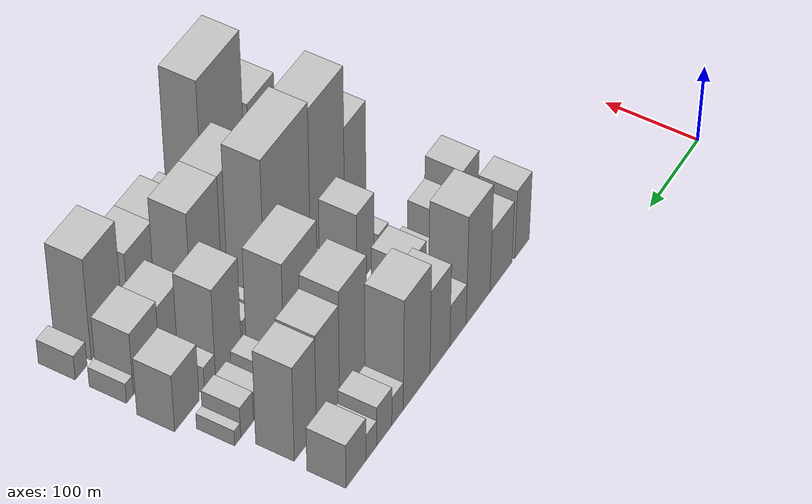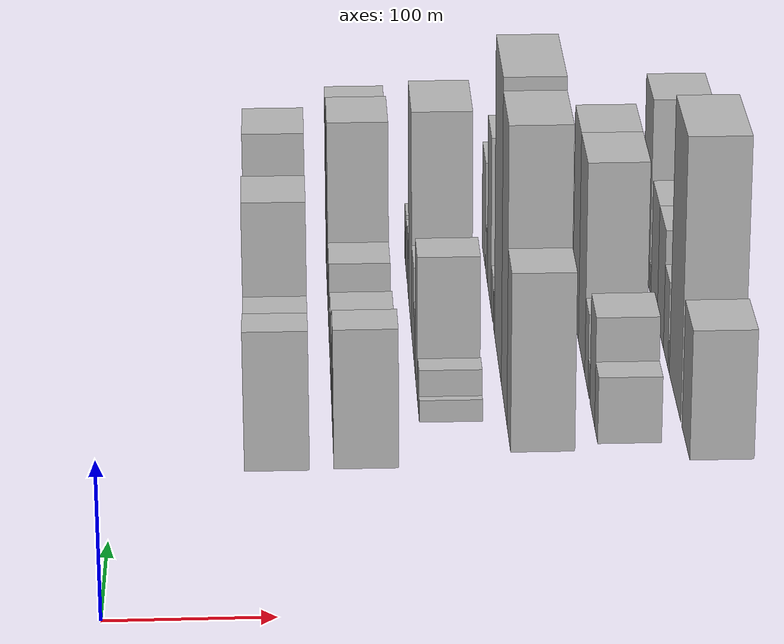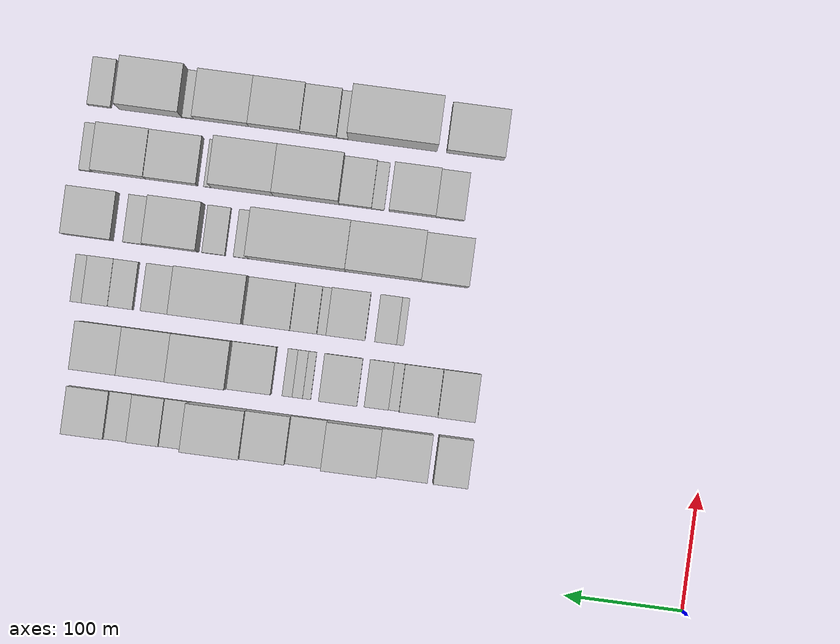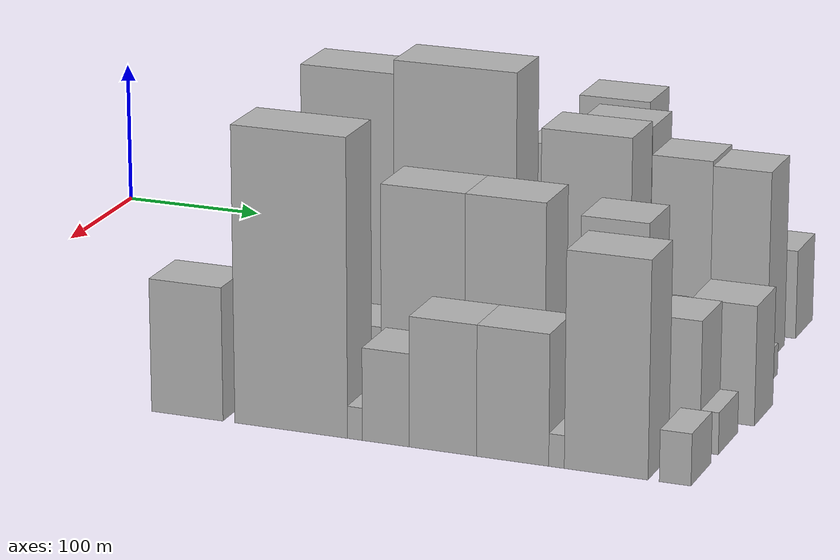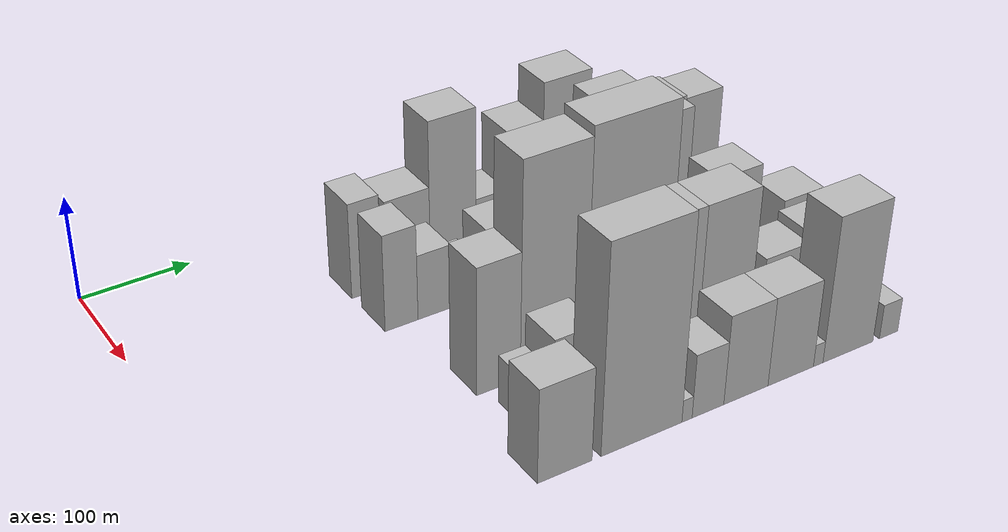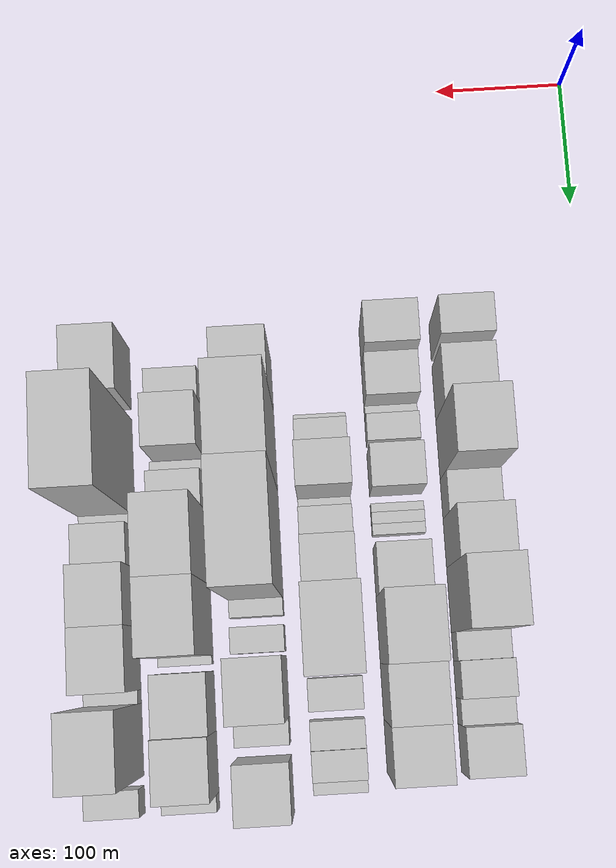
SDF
<sdf version="1.6">
 <world name="default">
  <model name="building_33">
   <static>1</static>
   <pose>100.0000 207.8353 0 0.000000 0.000000 0.000000</pose>
   <link name="link">
    <pose>0 0 46.50 0 0 0</pose>
    <collision name="collision"><geometry><box><size>40.0000 28.6792 93.0000</size></box></geometry></collision>
    <visual name="visual">
     <cast_shadows>0</cast_shadows>
     <geometry><box><size>40.0000 28.6792 93.0000</size></box></geometry>
     <material>
      <script>
       <uri>model://HANNAS_wall/materials/scripts</uri>
       <uri>model://HANNAS_wall/materials/textures</uri>
       <name>vrc/HANNAS_wall</name>
      </script>
     </material>
    </visual>
   </link>
  </model>
  <model name="building_34">
   <static>1</static>
   <pose>100.0000 248.5474 0 0.000000 0.000000 0.000000</pose>
   <link name="link">
    <pose>0 0 42.00 0 0 0</pose>
    <collision name="collision"><geometry><box><size>40.0000 42.7449 84.0000</size></box></geometry></collision>
    <visual name="visual">
     <cast_shadows>0</cast_shadows>
     <geometry><box><size>40.0000 42.7449 84.0000</size></box></geometry>
     <material>
      <script>
       <uri>model://HANNAS_wall/materials/scripts</uri>
       <uri>model://HANNAS_wall/materials/textures</uri>
       <name>vrc/HANNAS_wall</name>
      </script>
     </material>
    </visual>
   </link>
  </model>
  <model name="building_35">
   <static>1</static>
   <pose>100.0000 292.8291 0 0.000000 0.000000 0.000000</pose>
   <link name="link">
    <pose>0 0 73.50 0 0 0</pose>
    <collision name="collision"><geometry><box><size>40.0000 45.8186 147.0000</size></box></geometry></collision>
    <visual name="visual">
     <cast_shadows>0</cast_shadows>
     <geometry><box><size>40.0000 45.8186 147.0000</size></box></geometry>
     <material>
      <script>
       <uri>model://HANNAS_wall/materials/scripts</uri>
       <uri>model://HANNAS_wall/materials/textures</uri>
       <name>vrc/HANNAS_wall</name>
      </script>
     </material>
    </visual>
   </link>
  </model>
  <model name="building_36">
   <static>1</static>
   <pose>100.0000 330.9853 0 0.000000 0.000000 0.000000</pose>
   <link name="link">
    <pose>0 0 28.50 0 0 0</pose>
    <collision name="collision"><geometry><box><size>40.0000 30.4937 57.0000</size></box></geometry></collision>
    <visual name="visual">
     <cast_shadows>0</cast_shadows>
     <geometry><box><size>40.0000 30.4937 57.0000</size></box></geometry>
     <material>
      <script>
       <uri>model://HANNAS_wall/materials/scripts</uri>
       <uri>model://HANNAS_wall/materials/textures</uri>
       <name>vrc/HANNAS_wall</name>
      </script>
     </material>
    </visual>
   </link>
  </model>
  <model name="building_37">
   <static>1</static>
   <pose>100.0000 364.7827 0 0.000000 0.000000 0.000000</pose>
   <link name="link">
    <pose>0 0 57.00 0 0 0</pose>
    <collision name="collision"><geometry><box><size>40.0000 37.1011 114.0000</size></box></geometry></collision>
    <visual name="visual">
     <cast_shadows>0</cast_shadows>
     <geometry><box><size>40.0000 37.1011 114.0000</size></box></geometry>
     <material>
      <script>
       <uri>model://HANNAS_wall/materials/scripts</uri>
       <uri>model://HANNAS_wall/materials/textures</uri>
       <name>vrc/HANNAS_wall</name>
      </script>
     </material>
    </visual>
   </link>
  </model>
  <model name="building_38">
   <static>1</static>
   <pose>100.0000 407.6640 0 0.000000 0.000000 0.000000</pose>
   <link name="link">
    <pose>0 0 75.00 0 0 0</pose>
    <collision name="collision"><geometry><box><size>40.0000 48.6615 150.0000</size></box></geometry></collision>
    <visual name="visual">
     <cast_shadows>0</cast_shadows>
     <geometry><box><size>40.0000 48.6615 150.0000</size></box></geometry>
     <material>
      <script>
       <uri>model://HANNAS_wall/materials/scripts</uri>
       <uri>model://HANNAS_wall/materials/textures</uri>
       <name>vrc/HANNAS_wall</name>
      </script>
     </material>
    </visual>
   </link>
  </model>
  <model name="building_39">
   <static>1</static>
   <pose>100.0000 442.3935 0 0.000000 0.000000 0.000000</pose>
   <link name="link">
    <pose>0 0 19.50 0 0 0</pose>
    <collision name="collision"><geometry><box><size>40.0000 20.7976 39.0000</size></box></geometry></collision>
    <visual name="visual">
     <cast_shadows>0</cast_shadows>
     <geometry><box><size>40.0000 20.7976 39.0000</size></box></geometry>
     <material>
      <script>
       <uri>model://HANNAS_wall/materials/scripts</uri>
       <uri>model://HANNAS_wall/materials/textures</uri>
       <name>vrc/HANNAS_wall</name>
      </script>
     </material>
    </visual>
   </link>
  </model>
  <model name="building_40">
   <static>1</static>
   <pose>100.0000 466.3088 0 0.000000 0.000000 0.000000</pose>
   <link name="link">
    <pose>0 0 27.00 0 0 0</pose>
    <collision name="collision"><geometry><box><size>40.0000 27.0331 54.0000</size></box></geometry></collision>
    <visual name="visual">
     <cast_shadows>0</cast_shadows>
     <geometry><box><size>40.0000 27.0331 54.0000</size></box></geometry>
     <material>
      <script>
       <uri>model://HANNAS_wall/materials/scripts</uri>
       <uri>model://HANNAS_wall/materials/textures</uri>
       <name>vrc/HANNAS_wall</name>
      </script>
     </material>
    </visual>
   </link>
  </model>
  <model name="building_41">
   <static>1</static>
   <pose>100.0000 489.4667 0 0.000000 0.000000 0.000000</pose>
   <link name="link">
    <pose>0 0 18.00 0 0 0</pose>
    <collision name="collision"><geometry><box><size>40.0000 19.2828 36.0000</size></box></geometry></collision>
    <visual name="visual">
     <cast_shadows>0</cast_shadows>
     <geometry><box><size>40.0000 19.2828 36.0000</size></box></geometry>
     <material>
      <script>
       <uri>model://HANNAS_wall/materials/scripts</uri>
       <uri>model://HANNAS_wall/materials/textures</uri>
       <name>vrc/HANNAS_wall</name>
      </script>
     </material>
    </visual>
   </link>
  </model>
  <model name="building_42">
   <static>1</static>
   <pose>100.0000 516.7366 0 0.000000 0.000000 0.000000</pose>
   <link name="link">
    <pose>0 0 30.00 0 0 0</pose>
    <collision name="collision"><geometry><box><size>40.0000 35.2570 60.0000</size></box></geometry></collision>
    <visual name="visual">
     <cast_shadows>0</cast_shadows>
     <geometry><box><size>40.0000 35.2570 60.0000</size></box></geometry>
     <material>
      <script>
       <uri>model://HANNAS_wall/materials/scripts</uri>
       <uri>model://HANNAS_wall/materials/textures</uri>
       <name>vrc/HANNAS_wall</name>
      </script>
     </material>
    </visual>
   </link>
  </model>
  <model name="building_81">
   <static>1</static>
   <pose>155.0000 210.1403 0 0.000000 0.000000 0.000000</pose>
   <link name="link">
    <pose>0 0 46.50 0 0 0</pose>
    <collision name="collision"><geometry><box><size>40.0000 30.9602 93.0000</size></box></geometry></collision>
    <visual name="visual">
     <cast_shadows>0</cast_shadows>
     <geometry><box><size>40.0000 30.9602 93.0000</size></box></geometry>
     <material>
      <script>
       <uri>model://HANNAS_wall/materials/scripts</uri>
       <uri>model://HANNAS_wall/materials/textures</uri>
       <name>vrc/HANNAS_wall</name>
      </script>
     </material>
    </visual>
   </link>
  </model>
  <model name="building_82">
   <static>1</static>
   <pose>155.0000 241.7593 0 0.000000 0.000000 0.000000</pose>
   <link name="link">
    <pose>0 0 31.50 0 0 0</pose>
    <collision name="collision"><geometry><box><size>40.0000 32.2778 63.0000</size></box></geometry></collision>
    <visual name="visual">
     <cast_shadows>0</cast_shadows>
     <geometry><box><size>40.0000 32.2778 63.0000</size></box></geometry>
     <material>
      <script>
       <uri>model://HANNAS_wall/materials/scripts</uri>
       <uri>model://HANNAS_wall/materials/textures</uri>
       <name>vrc/HANNAS_wall</name>
      </script>
     </material>
    </visual>
   </link>
  </model>
  <model name="building_83">
   <static>1</static>
   <pose>155.0000 262.3826 0 0.000000 0.000000 0.000000</pose>
   <link name="link">
    <pose>0 0 9.00 0 0 0</pose>
    <collision name="collision"><geometry><box><size>40.0000 8.9688 18.0000</size></box></geometry></collision>
    <visual name="visual">
     <cast_shadows>0</cast_shadows>
     <geometry><box><size>40.0000 8.9688 18.0000</size></box></geometry>
     <material>
      <script>
       <uri>model://HANNAS_wall/materials/scripts</uri>
       <uri>model://HANNAS_wall/materials/textures</uri>
       <name>vrc/HANNAS_wall</name>
      </script>
     </material>
    </visual>
   </link>
  </model>
  <model name="building_84">
   <static>1</static>
   <pose>155.0000 277.1066 0 0.000000 0.000000 0.000000</pose>
   <link name="link">
    <pose>0 0 18.00 0 0 0</pose>
    <collision name="collision"><geometry><box><size>40.0000 20.4792 36.0000</size></box></geometry></collision>
    <visual name="visual">
     <cast_shadows>0</cast_shadows>
     <geometry><box><size>40.0000 20.4792 36.0000</size></box></geometry>
     <material>
      <script>
       <uri>model://HANNAS_wall/materials/scripts</uri>
       <uri>model://HANNAS_wall/materials/textures</uri>
       <name>vrc/HANNAS_wall</name>
      </script>
     </material>
    </visual>
   </link>
  </model>
  <model name="building_85">
   <static>1</static>
   <pose>155.0000 309.4111 0 0.000000 0.000000 0.000000</pose>
   <link name="link">
    <pose>0 0 31.50 0 0 0</pose>
    <collision name="collision"><geometry><box><size>40.0000 32.1298 63.0000</size></box></geometry></collision>
    <visual name="visual">
     <cast_shadows>0</cast_shadows>
     <geometry><box><size>40.0000 32.1298 63.0000</size></box></geometry>
     <material>
      <script>
       <uri>model://HANNAS_wall/materials/scripts</uri>
       <uri>model://HANNAS_wall/materials/textures</uri>
       <name>vrc/HANNAS_wall</name>
      </script>
     </material>
    </visual>
   </link>
  </model>
  <model name="building_86">
   <static>1</static>
   <pose>155.0000 335.9000 0 0.000000 0.000000 0.000000</pose>
   <link name="link">
    <pose>0 0 7.50 0 0 0</pose>
    <collision name="collision"><geometry><box><size>40.0000 6.8479 15.0000</size></box></geometry></collision>
    <visual name="visual">
     <cast_shadows>0</cast_shadows>
     <geometry><box><size>40.0000 6.8479 15.0000</size></box></geometry>
     <material>
      <script>
       <uri>model://HANNAS_wall/materials/scripts</uri>
       <uri>model://HANNAS_wall/materials/textures</uri>
       <name>vrc/HANNAS_wall</name>
      </script>
     </material>
    </visual>
   </link>
  </model>
  <model name="building_87">
   <static>1</static>
   <pose>155.0000 343.7761 0 0.000000 0.000000 0.000000</pose>
   <link name="link">
    <pose>0 0 9.00 0 0 0</pose>
    <collision name="collision"><geometry><box><size>40.0000 8.9042 18.0000</size></box></geometry></collision>
    <visual name="visual">
     <cast_shadows>0</cast_shadows>
     <geometry><box><size>40.0000 8.9042 18.0000</size></box></geometry>
     <material>
      <script>
       <uri>model://HANNAS_wall/materials/scripts</uri>
       <uri>model://HANNAS_wall/materials/textures</uri>
       <name>vrc/HANNAS_wall</name>
      </script>
     </material>
    </visual>
   </link>
  </model>
  <model name="building_88">
   <static>1</static>
   <pose>155.0000 352.4520 0 0.000000 0.000000 0.000000</pose>
   <link name="link">
    <pose>0 0 9.00 0 0 0</pose>
    <collision name="collision"><geometry><box><size>40.0000 8.4478 18.0000</size></box></geometry></collision>
    <visual name="visual">
     <cast_shadows>0</cast_shadows>
     <geometry><box><size>40.0000 8.4478 18.0000</size></box></geometry>
     <material>
      <script>
       <uri>model://HANNAS_wall/materials/scripts</uri>
       <uri>model://HANNAS_wall/materials/textures</uri>
       <name>vrc/HANNAS_wall</name>
      </script>
     </material>
    </visual>
   </link>
  </model>
  <model name="building_89">
   <static>1</static>
   <pose>155.0000 384.0610 0 0.000000 0.000000 0.000000</pose>
   <link name="link">
    <pose>0 0 33.00 0 0 0</pose>
    <collision name="collision"><geometry><box><size>40.0000 36.7701 66.0000</size></box></geometry></collision>
    <visual name="visual">
     <cast_shadows>0</cast_shadows>
     <geometry><box><size>40.0000 36.7701 66.0000</size></box></geometry>
     <material>
      <script>
       <uri>model://HANNAS_wall/materials/scripts</uri>
       <uri>model://HANNAS_wall/materials/textures</uri>
       <name>vrc/HANNAS_wall</name>
      </script>
     </material>
    </visual>
   </link>
  </model>
  <model name="building_90">
   <static>1</static>
   <pose>155.0000 427.0287 0 0.000000 0.000000 0.000000</pose>
   <link name="link">
    <pose>0 0 75.00 0 0 0</pose>
    <collision name="collision"><geometry><box><size>40.0000 49.1653 150.0000</size></box></geometry></collision>
    <visual name="visual">
     <cast_shadows>0</cast_shadows>
     <geometry><box><size>40.0000 49.1653 150.0000</size></box></geometry>
     <material>
      <script>
       <uri>model://HANNAS_wall/materials/scripts</uri>
       <uri>model://HANNAS_wall/materials/textures</uri>
       <name>vrc/HANNAS_wall</name>
      </script>
     </material>
    </visual>
   </link>
  </model>
  <model name="building_91">
   <static>1</static>
   <pose>155.0000 472.0223 0 0.000000 0.000000 0.000000</pose>
   <link name="link">
    <pose>0 0 66.00 0 0 0</pose>
    <collision name="collision"><geometry><box><size>40.0000 40.8221 132.0000</size></box></geometry></collision>
    <visual name="visual">
     <cast_shadows>0</cast_shadows>
     <geometry><box><size>40.0000 40.8221 132.0000</size></box></geometry>
     <material>
      <script>
       <uri>model://HANNAS_wall/materials/scripts</uri>
       <uri>model://HANNAS_wall/materials/textures</uri>
       <name>vrc/HANNAS_wall</name>
      </script>
     </material>
    </visual>
   </link>
  </model>
  <model name="building_92">
   <static>1</static>
   <pose>155.0000 511.8199 0 0.000000 0.000000 0.000000</pose>
   <link name="link">
    <pose>0 0 64.50 0 0 0</pose>
    <collision name="collision"><geometry><box><size>40.0000 38.7729 129.0000</size></box></geometry></collision>
    <visual name="visual">
     <cast_shadows>0</cast_shadows>
     <geometry><box><size>40.0000 38.7729 129.0000</size></box></geometry>
     <material>
      <script>
       <uri>model://HANNAS_wall/materials/scripts</uri>
       <uri>model://HANNAS_wall/materials/textures</uri>
       <name>vrc/HANNAS_wall</name>
      </script>
     </material>
    </visual>
   </link>
  </model>
  <model name="building_130">
   <static>1</static>
   <pose>210.0000 264.2033 0 0.000000 0.000000 0.000000</pose>
   <link name="link">
    <pose>0 0 7.50 0 0 0</pose>
    <collision name="collision"><geometry><box><size>40.0000 6.1246 15.0000</size></box></geometry></collision>
    <visual name="visual">
     <cast_shadows>0</cast_shadows>
     <geometry><box><size>40.0000 6.1246 15.0000</size></box></geometry>
     <material>
      <script>
       <uri>model://HANNAS_wall/materials/scripts</uri>
       <uri>model://HANNAS_wall/materials/textures</uri>
       <name>vrc/HANNAS_wall</name>
      </script>
     </material>
    </visual>
   </link>
  </model>
  <model name="building_131">
   <static>1</static>
   <pose>210.0000 276.5284 0 0.000000 0.000000 0.000000</pose>
   <link name="link">
    <pose>0 0 16.50 0 0 0</pose>
    <collision name="collision"><geometry><box><size>40.0000 18.5256 33.0000</size></box></geometry></collision>
    <visual name="visual">
     <cast_shadows>0</cast_shadows>
     <geometry><box><size>40.0000 18.5256 33.0000</size></box></geometry>
     <material>
      <script>
       <uri>model://HANNAS_wall/materials/scripts</uri>
       <uri>model://HANNAS_wall/materials/textures</uri>
       <name>vrc/HANNAS_wall</name>
      </script>
     </material>
    </visual>
   </link>
  </model>
  <model name="building_132">
   <static>1</static>
   <pose>210.0000 309.9984 0 0.000000 0.000000 0.000000</pose>
   <link name="link">
    <pose>0 0 49.50 0 0 0</pose>
    <collision name="collision"><geometry><box><size>40.0000 32.4144 99.0000</size></box></geometry></collision>
    <visual name="visual">
     <cast_shadows>0</cast_shadows>
     <geometry><box><size>40.0000 32.4144 99.0000</size></box></geometry>
     <material>
      <script>
       <uri>model://HANNAS_wall/materials/scripts</uri>
       <uri>model://HANNAS_wall/materials/textures</uri>
       <name>vrc/HANNAS_wall</name>
      </script>
     </material>
    </visual>
   </link>
  </model>
  <model name="building_133">
   <static>1</static>
   <pose>210.0000 330.3408 0 0.000000 0.000000 0.000000</pose>
   <link name="link">
    <pose>0 0 9.00 0 0 0</pose>
    <collision name="collision"><geometry><box><size>40.0000 8.2704 18.0000</size></box></geometry></collision>
    <visual name="visual">
     <cast_shadows>0</cast_shadows>
     <geometry><box><size>40.0000 8.2704 18.0000</size></box></geometry>
     <material>
      <script>
       <uri>model://HANNAS_wall/materials/scripts</uri>
       <uri>model://HANNAS_wall/materials/textures</uri>
       <name>vrc/HANNAS_wall</name>
      </script>
     </material>
    </visual>
   </link>
  </model>
  <model name="building_134">
   <static>1</static>
   <pose>210.0000 345.7050 0 0.000000 0.000000 0.000000</pose>
   <link name="link">
    <pose>0 0 21.00 0 0 0</pose>
    <collision name="collision"><geometry><box><size>40.0000 22.4581 42.0000</size></box></geometry></collision>
    <visual name="visual">
     <cast_shadows>0</cast_shadows>
     <geometry><box><size>40.0000 22.4581 42.0000</size></box></geometry>
     <material>
      <script>
       <uri>model://HANNAS_wall/materials/scripts</uri>
       <uri>model://HANNAS_wall/materials/textures</uri>
       <name>vrc/HANNAS_wall</name>
      </script>
     </material>
    </visual>
   </link>
  </model>
  <model name="building_135">
   <static>1</static>
   <pose>210.0000 376.3959 0 0.000000 0.000000 0.000000</pose>
   <link name="link">
    <pose>0 0 33.00 0 0 0</pose>
    <collision name="collision"><geometry><box><size>40.0000 38.9238 66.0000</size></box></geometry></collision>
    <visual name="visual">
     <cast_shadows>0</cast_shadows>
     <geometry><box><size>40.0000 38.9238 66.0000</size></box></geometry>
     <material>
      <script>
       <uri>model://HANNAS_wall/materials/scripts</uri>
       <uri>model://HANNAS_wall/materials/textures</uri>
       <name>vrc/HANNAS_wall</name>
      </script>
     </material>
    </visual>
   </link>
  </model>
  <model name="building_136">
   <static>1</static>
   <pose>210.0000 426.0237 0 0.000000 0.000000 0.000000</pose>
   <link name="link">
    <pose>0 0 79.50 0 0 0</pose>
    <collision name="collision"><geometry><box><size>40.0000 60.3318 159.0000</size></box></geometry></collision>
    <visual name="visual">
     <cast_shadows>0</cast_shadows>
     <geometry><box><size>40.0000 60.3318 159.0000</size></box></geometry>
     <material>
      <script>
       <uri>model://HANNAS_wall/materials/scripts</uri>
       <uri>model://HANNAS_wall/materials/textures</uri>
       <name>vrc/HANNAS_wall</name>
      </script>
     </material>
    </visual>
   </link>
  </model>
  <model name="building_137">
   <static>1</static>
   <pose>210.0000 470.8934 0 0.000000 0.000000 0.000000</pose>
   <link name="link">
    <pose>0 0 22.50 0 0 0</pose>
    <collision name="collision"><geometry><box><size>40.0000 23.4076 45.0000</size></box></geometry></collision>
    <visual name="visual">
     <cast_shadows>0</cast_shadows>
     <geometry><box><size>40.0000 23.4076 45.0000</size></box></geometry>
     <material>
      <script>
       <uri>model://HANNAS_wall/materials/scripts</uri>
       <uri>model://HANNAS_wall/materials/textures</uri>
       <name>vrc/HANNAS_wall</name>
      </script>
     </material>
    </visual>
   </link>
  </model>
  <model name="building_138">
   <static>1</static>
   <pose>210.0000 499.9682 0 0.000000 0.000000 0.000000</pose>
   <link name="link">
    <pose>0 0 19.50 0 0 0</pose>
    <collision name="collision"><geometry><box><size>40.0000 20.7420 39.0000</size></box></geometry></collision>
    <visual name="visual">
     <cast_shadows>0</cast_shadows>
     <geometry><box><size>40.0000 20.7420 39.0000</size></box></geometry>
     <material>
      <script>
       <uri>model://HANNAS_wall/materials/scripts</uri>
       <uri>model://HANNAS_wall/materials/textures</uri>
       <name>vrc/HANNAS_wall</name>
      </script>
     </material>
    </visual>
   </link>
  </model>
  <model name="building_139">
   <static>1</static>
   <pose>210.0000 521.3492 0 0.000000 0.000000 0.000000</pose>
   <link name="link">
    <pose>0 0 21.00 0 0 0</pose>
    <collision name="collision"><geometry><box><size>40.0000 22.0198 42.0000</size></box></geometry></collision>
    <visual name="visual">
     <cast_shadows>0</cast_shadows>
     <geometry><box><size>40.0000 22.0198 42.0000</size></box></geometry>
     <material>
      <script>
       <uri>model://HANNAS_wall/materials/scripts</uri>
       <uri>model://HANNAS_wall/materials/textures</uri>
       <name>vrc/HANNAS_wall</name>
      </script>
     </material>
    </visual>
   </link>
  </model>
  <model name="building_140">
   <static>1</static>
   <pose>210.0000 537.5571 0 0.000000 0.000000 0.000000</pose>
   <link name="link">
    <pose>0 0 10.50 0 0 0</pose>
    <collision name="collision"><geometry><box><size>40.0000 10.3960 21.0000</size></box></geometry></collision>
    <visual name="visual">
     <cast_shadows>0</cast_shadows>
     <geometry><box><size>40.0000 10.3960 21.0000</size></box></geometry>
     <material>
      <script>
       <uri>model://HANNAS_wall/materials/scripts</uri>
       <uri>model://HANNAS_wall/materials/textures</uri>
       <name>vrc/HANNAS_wall</name>
      </script>
     </material>
    </visual>
   </link>
  </model>
  <model name="building_184">
   <static>1</static>
   <pose>265.0000 234.5608 0 0.000000 0.000000 0.000000</pose>
   <link name="link">
    <pose>0 0 60.00 0 0 0</pose>
    <collision name="collision"><geometry><box><size>40.0000 40.2136 120.0000</size></box></geometry></collision>
    <visual name="visual">
     <cast_shadows>0</cast_shadows>
     <geometry><box><size>40.0000 40.2136 120.0000</size></box></geometry>
     <material>
      <script>
       <uri>model://HANNAS_wall/materials/scripts</uri>
       <uri>model://HANNAS_wall/materials/textures</uri>
       <name>vrc/HANNAS_wall</name>
      </script>
     </material>
    </visual>
   </link>
  </model>
  <model name="building_185">
   <static>1</static>
   <pose>265.0000 285.9932 0 0.000000 0.000000 0.000000</pose>
   <link name="link">
    <pose>0 0 100.50 0 0 0</pose>
    <collision name="collision"><geometry><box><size>40.0000 62.6513 201.0000</size></box></geometry></collision>
    <visual name="visual">
     <cast_shadows>0</cast_shadows>
     <geometry><box><size>40.0000 62.6513 201.0000</size></box></geometry>
     <material>
      <script>
       <uri>model://HANNAS_wall/materials/scripts</uri>
       <uri>model://HANNAS_wall/materials/textures</uri>
       <name>vrc/HANNAS_wall</name>
      </script>
     </material>
    </visual>
   </link>
  </model>
  <model name="building_186">
   <static>1</static>
   <pose>265.0000 358.1445 0 0.000000 0.000000 0.000000</pose>
   <link name="link">
    <pose>0 0 105.00 0 0 0</pose>
    <collision name="collision"><geometry><box><size>40.0000 81.6512 210.0000</size></box></geometry></collision>
    <visual name="visual">
     <cast_shadows>0</cast_shadows>
     <geometry><box><size>40.0000 81.6512 210.0000</size></box></geometry>
     <material>
      <script>
       <uri>model://HANNAS_wall/materials/scripts</uri>
       <uri>model://HANNAS_wall/materials/textures</uri>
       <name>vrc/HANNAS_wall</name>
      </script>
     </material>
    </visual>
   </link>
  </model>
  <model name="building_187">
   <static>1</static>
   <pose>265.0000 405.5779 0 0.000000 0.000000 0.000000</pose>
   <link name="link">
    <pose>0 0 13.50 0 0 0</pose>
    <collision name="collision"><geometry><box><size>40.0000 13.2157 27.0000</size></box></geometry></collision>
    <visual name="visual">
     <cast_shadows>0</cast_shadows>
     <geometry><box><size>40.0000 13.2157 27.0000</size></box></geometry>
     <material>
      <script>
       <uri>model://HANNAS_wall/materials/scripts</uri>
       <uri>model://HANNAS_wall/materials/textures</uri>
       <name>vrc/HANNAS_wall</name>
      </script>
     </material>
    </visual>
   </link>
  </model>
  <model name="building_188">
   <static>1</static>
   <pose>265.0000 428.8843 0 0.000000 0.000000 0.000000</pose>
   <link name="link">
    <pose>0 0 16.50 0 0 0</pose>
    <collision name="collision"><geometry><box><size>40.0000 19.3971 33.0000</size></box></geometry></collision>
    <visual name="visual">
     <cast_shadows>0</cast_shadows>
     <geometry><box><size>40.0000 19.3971 33.0000</size></box></geometry>
     <material>
      <script>
       <uri>model://HANNAS_wall/materials/scripts</uri>
       <uri>model://HANNAS_wall/materials/textures</uri>
       <name>vrc/HANNAS_wall</name>
      </script>
     </material>
    </visual>
   </link>
  </model>
  <model name="building_189">
   <static>1</static>
   <pose>265.0000 463.8488 0 0.000000 0.000000 0.000000</pose>
   <link name="link">
    <pose>0 0 61.50 0 0 0</pose>
    <collision name="collision"><geometry><box><size>40.0000 44.5318 123.0000</size></box></geometry></collision>
    <visual name="visual">
     <cast_shadows>0</cast_shadows>
     <geometry><box><size>40.0000 44.5318 123.0000</size></box></geometry>
     <material>
      <script>
       <uri>model://HANNAS_wall/materials/scripts</uri>
       <uri>model://HANNAS_wall/materials/textures</uri>
       <name>vrc/HANNAS_wall</name>
      </script>
     </material>
    </visual>
   </link>
  </model>
  <model name="building_190">
   <static>1</static>
   <pose>265.0000 495.5735 0 0.000000 0.000000 0.000000</pose>
   <link name="link">
    <pose>0 0 18.00 0 0 0</pose>
    <collision name="collision"><geometry><box><size>40.0000 18.9177 36.0000</size></box></geometry></collision>
    <visual name="visual">
     <cast_shadows>0</cast_shadows>
     <geometry><box><size>40.0000 18.9177 36.0000</size></box></geometry>
     <material>
      <script>
       <uri>model://HANNAS_wall/materials/scripts</uri>
       <uri>model://HANNAS_wall/materials/textures</uri>
       <name>vrc/HANNAS_wall</name>
      </script>
     </material>
    </visual>
   </link>
  </model>
  <model name="building_191">
   <static>1</static>
   <pose>265.0000 534.9587 0 0.000000 0.000000 0.000000</pose>
   <link name="link">
    <pose>0 0 39.00 0 0 0</pose>
    <collision name="collision"><geometry><box><size>40.0000 41.8527 78.0000</size></box></geometry></collision>
    <visual name="visual">
     <cast_shadows>0</cast_shadows>
     <geometry><box><size>40.0000 41.8527 78.0000</size></box></geometry>
     <material>
      <script>
       <uri>model://HANNAS_wall/materials/scripts</uri>
       <uri>model://HANNAS_wall/materials/textures</uri>
       <name>vrc/HANNAS_wall</name>
      </script>
     </material>
    </visual>
   </link>
  </model>
  <model name="building_229">
   <static>1</static>
   <pose>320.0000 236.8170 0 0.000000 0.000000 0.000000</pose>
   <link name="link">
    <pose>0 0 22.50 0 0 0</pose>
    <collision name="collision"><geometry><box><size>40.0000 24.2259 45.0000</size></box></geometry></collision>
    <visual name="visual">
     <cast_shadows>0</cast_shadows>
     <geometry><box><size>40.0000 24.2259 45.0000</size></box></geometry>
     <material>
      <script>
       <uri>model://HANNAS_wall/materials/scripts</uri>
       <uri>model://HANNAS_wall/materials/textures</uri>
       <name>vrc/HANNAS_wall</name>
      </script>
     </material>
    </visual>
   </link>
  </model>
  <model name="building_230">
   <static>1</static>
   <pose>320.0000 268.5896 0 0.000000 0.000000 0.000000</pose>
   <link name="link">
    <pose>0 0 37.50 0 0 0</pose>
    <collision name="collision"><geometry><box><size>40.0000 39.3193 75.0000</size></box></geometry></collision>
    <visual name="visual">
     <cast_shadows>0</cast_shadows>
     <geometry><box><size>40.0000 39.3193 75.0000</size></box></geometry>
     <material>
      <script>
       <uri>model://HANNAS_wall/materials/scripts</uri>
       <uri>model://HANNAS_wall/materials/textures</uri>
       <name>vrc/HANNAS_wall</name>
      </script>
     </material>
    </visual>
   </link>
  </model>
  <model name="building_231">
   <static>1</static>
   <pose>320.0000 297.6039 0 0.000000 0.000000 0.000000</pose>
   <link name="link">
    <pose>0 0 12.00 0 0 0</pose>
    <collision name="collision"><geometry><box><size>40.0000 10.7092 24.0000</size></box></geometry></collision>
    <visual name="visual">
     <cast_shadows>0</cast_shadows>
     <geometry><box><size>40.0000 10.7092 24.0000</size></box></geometry>
     <material>
      <script>
       <uri>model://HANNAS_wall/materials/scripts</uri>
       <uri>model://HANNAS_wall/materials/textures</uri>
       <name>vrc/HANNAS_wall</name>
      </script>
     </material>
    </visual>
   </link>
  </model>
  <model name="building_232">
   <static>1</static>
   <pose>320.0000 316.6450 0 0.000000 0.000000 0.000000</pose>
   <link name="link">
    <pose>0 0 27.00 0 0 0</pose>
    <collision name="collision"><geometry><box><size>40.0000 27.3729 54.0000</size></box></geometry></collision>
    <visual name="visual">
     <cast_shadows>0</cast_shadows>
     <geometry><box><size>40.0000 27.3729 54.0000</size></box></geometry>
     <material>
      <script>
       <uri>model://HANNAS_wall/materials/scripts</uri>
       <uri>model://HANNAS_wall/materials/textures</uri>
       <name>vrc/HANNAS_wall</name>
      </script>
     </material>
    </visual>
   </link>
  </model>
  <model name="building_233">
   <static>1</static>
   <pose>320.0000 358.0714 0 0.000000 0.000000 0.000000</pose>
   <link name="link">
    <pose>0 0 73.50 0 0 0</pose>
    <collision name="collision"><geometry><box><size>40.0000 55.4801 147.0000</size></box></geometry></collision>
    <visual name="visual">
     <cast_shadows>0</cast_shadows>
     <geometry><box><size>40.0000 55.4801 147.0000</size></box></geometry>
     <material>
      <script>
       <uri>model://HANNAS_wall/materials/scripts</uri>
       <uri>model://HANNAS_wall/materials/textures</uri>
       <name>vrc/HANNAS_wall</name>
      </script>
     </material>
    </visual>
   </link>
  </model>
  <model name="building_234">
   <static>1</static>
   <pose>320.0000 412.0061 0 0.000000 0.000000 0.000000</pose>
   <link name="link">
    <pose>0 0 73.50 0 0 0</pose>
    <collision name="collision"><geometry><box><size>40.0000 52.3892 147.0000</size></box></geometry></collision>
    <visual name="visual">
     <cast_shadows>0</cast_shadows>
     <geometry><box><size>40.0000 52.3892 147.0000</size></box></geometry>
     <material>
      <script>
       <uri>model://HANNAS_wall/materials/scripts</uri>
       <uri>model://HANNAS_wall/materials/textures</uri>
       <name>vrc/HANNAS_wall</name>
      </script>
     </material>
    </visual>
   </link>
  </model>
  <model name="building_235">
   <static>1</static>
   <pose>320.0000 441.5109 0 0.000000 0.000000 0.000000</pose>
   <link name="link">
    <pose>0 0 7.50 0 0 0</pose>
    <collision name="collision"><geometry><box><size>40.0000 6.6205 15.0000</size></box></geometry></collision>
    <visual name="visual">
     <cast_shadows>0</cast_shadows>
     <geometry><box><size>40.0000 6.6205 15.0000</size></box></geometry>
     <material>
      <script>
       <uri>model://HANNAS_wall/materials/scripts</uri>
       <uri>model://HANNAS_wall/materials/textures</uri>
       <name>vrc/HANNAS_wall</name>
      </script>
     </material>
    </visual>
   </link>
  </model>
  <model name="building_236">
   <static>1</static>
   <pose>320.0000 471.8070 0 0.000000 0.000000 0.000000</pose>
   <link name="link">
    <pose>0 0 37.50 0 0 0</pose>
    <collision name="collision"><geometry><box><size>40.0000 43.9716 75.0000</size></box></geometry></collision>
    <visual name="visual">
     <cast_shadows>0</cast_shadows>
     <geometry><box><size>40.0000 43.9716 75.0000</size></box></geometry>
     <material>
      <script>
       <uri>model://HANNAS_wall/materials/scripts</uri>
       <uri>model://HANNAS_wall/materials/textures</uri>
       <name>vrc/HANNAS_wall</name>
      </script>
     </material>
    </visual>
   </link>
  </model>
  <model name="building_237">
   <static>1</static>
   <pose>320.0000 515.8968 0 0.000000 0.000000 0.000000</pose>
   <link name="link">
    <pose>0 0 42.00 0 0 0</pose>
    <collision name="collision"><geometry><box><size>40.0000 44.2081 84.0000</size></box></geometry></collision>
    <visual name="visual">
     <cast_shadows>0</cast_shadows>
     <geometry><box><size>40.0000 44.2081 84.0000</size></box></geometry>
     <material>
      <script>
       <uri>model://HANNAS_wall/materials/scripts</uri>
       <uri>model://HANNAS_wall/materials/textures</uri>
       <name>vrc/HANNAS_wall</name>
      </script>
     </material>
    </visual>
   </link>
  </model>
  <model name="building_238">
   <static>1</static>
   <pose>320.0000 543.8730 0 0.000000 0.000000 0.000000</pose>
   <link name="link">
    <pose>0 0 13.50 0 0 0</pose>
    <collision name="collision"><geometry><box><size>40.0000 11.7443 27.0000</size></box></geometry></collision>
    <visual name="visual">
     <cast_shadows>0</cast_shadows>
     <geometry><box><size>40.0000 11.7443 27.0000</size></box></geometry>
     <material>
      <script>
       <uri>model://HANNAS_wall/materials/scripts</uri>
       <uri>model://HANNAS_wall/materials/textures</uri>
       <name>vrc/HANNAS_wall</name>
      </script>
     </material>
    </visual>
   </link>
  </model>
  <model name="building_279">
   <static>1</static>
   <pose>375.0000 222.6636 0 0.000000 0.000000 0.000000</pose>
   <link name="link">
    <pose>0 0 43.50 0 0 0</pose>
    <collision name="collision"><geometry><box><size>40.0000 48.4878 87.0000</size></box></geometry></collision>
    <visual name="visual">
     <cast_shadows>0</cast_shadows>
     <geometry><box><size>40.0000 48.4878 87.0000</size></box></geometry>
     <material>
      <script>
       <uri>model://HANNAS_wall/materials/scripts</uri>
       <uri>model://HANNAS_wall/materials/textures</uri>
       <name>vrc/HANNAS_wall</name>
      </script>
     </material>
    </visual>
   </link>
  </model>
  <model name="building_280">
   <static>1</static>
   <pose>375.0000 292.4628 0 0.000000 0.000000 0.000000</pose>
   <link name="link">
    <pose>0 0 96.00 0 0 0</pose>
    <collision name="collision"><geometry><box><size>40.0000 75.1106 192.0000</size></box></geometry></collision>
    <visual name="visual">
     <cast_shadows>0</cast_shadows>
     <geometry><box><size>40.0000 75.1106 192.0000</size></box></geometry>
     <material>
      <script>
       <uri>model://HANNAS_wall/materials/scripts</uri>
       <uri>model://HANNAS_wall/materials/textures</uri>
       <name>vrc/HANNAS_wall</name>
      </script>
     </material>
    </visual>
   </link>
  </model>
  <model name="building_281">
   <static>1</static>
   <pose>375.0000 334.8740 0 0.000000 0.000000 0.000000</pose>
   <link name="link">
    <pose>0 0 10.50 0 0 0</pose>
    <collision name="collision"><geometry><box><size>40.0000 9.7119 21.0000</size></box></geometry></collision>
    <visual name="visual">
     <cast_shadows>0</cast_shadows>
     <geometry><box><size>40.0000 9.7119 21.0000</size></box></geometry>
     <material>
      <script>
       <uri>model://HANNAS_wall/materials/scripts</uri>
       <uri>model://HANNAS_wall/materials/textures</uri>
       <name>vrc/HANNAS_wall</name>
      </script>
     </material>
    </visual>
   </link>
  </model>
  <model name="building_282">
   <static>1</static>
   <pose>375.0000 355.0434 0 0.000000 0.000000 0.000000</pose>
   <link name="link">
    <pose>0 0 30.00 0 0 0</pose>
    <collision name="collision"><geometry><box><size>40.0000 30.6269 60.0000</size></box></geometry></collision>
    <visual name="visual">
     <cast_shadows>0</cast_shadows>
     <geometry><box><size>40.0000 30.6269 60.0000</size></box></geometry>
     <material>
      <script>
       <uri>model://HANNAS_wall/materials/scripts</uri>
       <uri>model://HANNAS_wall/materials/textures</uri>
       <name>vrc/HANNAS_wall</name>
      </script>
     </material>
    </visual>
   </link>
  </model>
  <model name="building_283">
   <static>1</static>
   <pose>375.0000 392.2228 0 0.000000 0.000000 0.000000</pose>
   <link name="link">
    <pose>0 0 42.00 0 0 0</pose>
    <collision name="collision"><geometry><box><size>40.0000 43.7318 84.0000</size></box></geometry></collision>
    <visual name="visual">
     <cast_shadows>0</cast_shadows>
     <geometry><box><size>40.0000 43.7318 84.0000</size></box></geometry>
     <material>
      <script>
       <uri>model://HANNAS_wall/materials/scripts</uri>
       <uri>model://HANNAS_wall/materials/textures</uri>
       <name>vrc/HANNAS_wall</name>
      </script>
     </material>
    </visual>
   </link>
  </model>
  <model name="building_284">
   <static>1</static>
   <pose>375.0000 437.2485 0 0.000000 0.000000 0.000000</pose>
   <link name="link">
    <pose>0 0 42.00 0 0 0</pose>
    <collision name="collision"><geometry><box><size>40.0000 46.3196 84.0000</size></box></geometry></collision>
    <visual name="visual">
     <cast_shadows>0</cast_shadows>
     <geometry><box><size>40.0000 46.3196 84.0000</size></box></geometry>
     <material>
      <script>
       <uri>model://HANNAS_wall/materials/scripts</uri>
       <uri>model://HANNAS_wall/materials/textures</uri>
       <name>vrc/HANNAS_wall</name>
      </script>
     </material>
    </visual>
   </link>
  </model>
  <model name="building_285">
   <static>1</static>
   <pose>375.0000 465.3500 0 0.000000 0.000000 0.000000</pose>
   <link name="link">
    <pose>0 0 10.50 0 0 0</pose>
    <collision name="collision"><geometry><box><size>40.0000 9.8834 21.0000</size></box></geometry></collision>
    <visual name="visual">
     <cast_shadows>0</cast_shadows>
     <geometry><box><size>40.0000 9.8834 21.0000</size></box></geometry>
     <material>
      <script>
       <uri>model://HANNAS_wall/materials/scripts</uri>
       <uri>model://HANNAS_wall/materials/textures</uri>
       <name>vrc/HANNAS_wall</name>
      </script>
     </material>
    </visual>
   </link>
  </model>
  <model name="building_286">
   <static>1</static>
   <pose>375.0000 496.6942 0 0.000000 0.000000 0.000000</pose>
   <link name="link">
    <pose>0 0 69.00 0 0 0</pose>
    <collision name="collision"><geometry><box><size>40.0000 52.8050 138.0000</size></box></geometry></collision>
    <visual name="visual">
     <cast_shadows>0</cast_shadows>
     <geometry><box><size>40.0000 52.8050 138.0000</size></box></geometry>
     <material>
      <script>
       <uri>model://HANNAS_wall/materials/scripts</uri>
       <uri>model://HANNAS_wall/materials/textures</uri>
       <name>vrc/HANNAS_wall</name>
      </script>
     </material>
    </visual>
   </link>
  </model>
  <model name="building_287">
   <static>1</static>
   <pose>375.0000 539.9881 0 0.000000 0.000000 0.000000</pose>
   <link name="link">
    <pose>0 0 16.50 0 0 0</pose>
    <collision name="collision"><geometry><box><size>40.0000 19.7828 33.0000</size></box></geometry></collision>
    <visual name="visual">
     <cast_shadows>0</cast_shadows>
     <geometry><box><size>40.0000 19.7828 33.0000</size></box></geometry>
     <material>
      <script>
       <uri>model://HANNAS_wall/materials/scripts</uri>
       <uri>model://HANNAS_wall/materials/textures</uri>
       <name>vrc/HANNAS_wall</name>
      </script>
     </material>
    </visual>
   </link>
  </model>
 </world>
</sdf>
